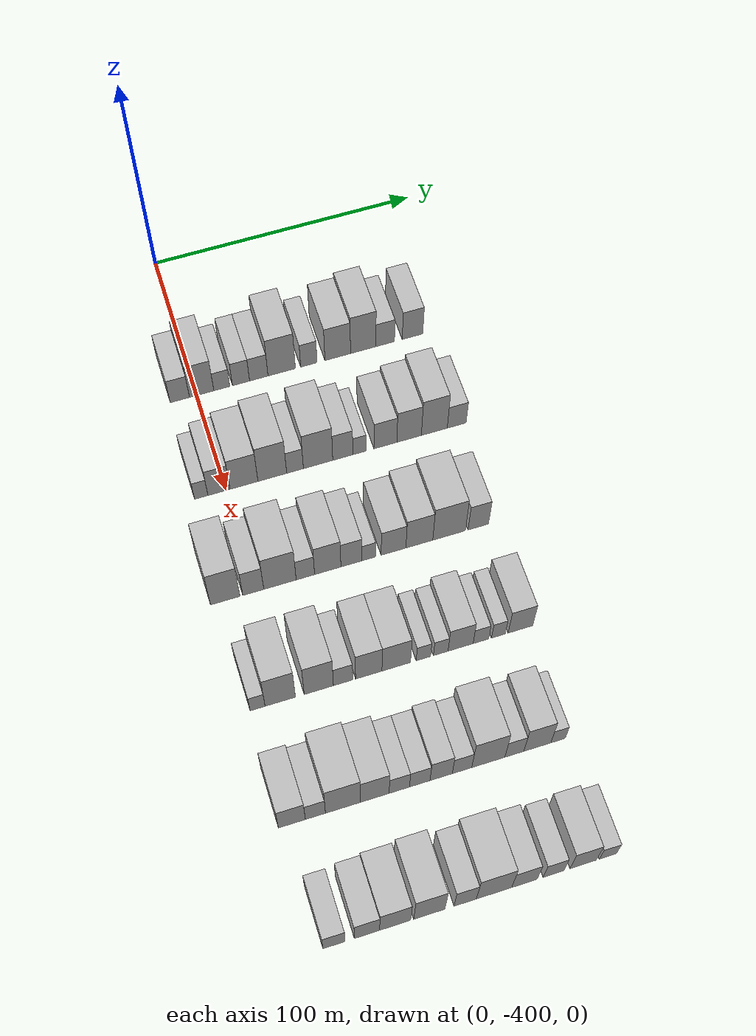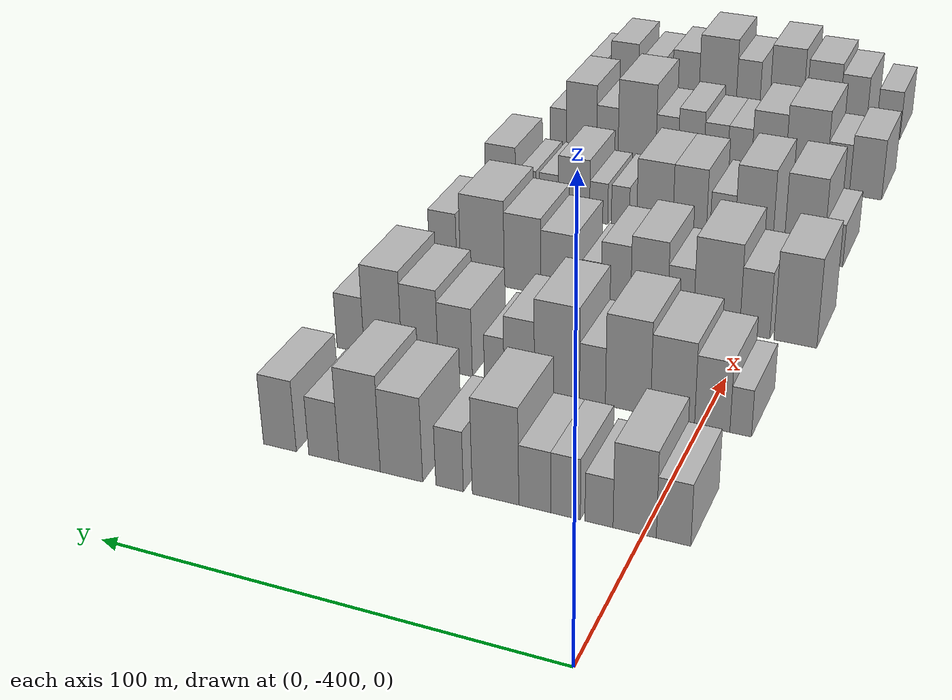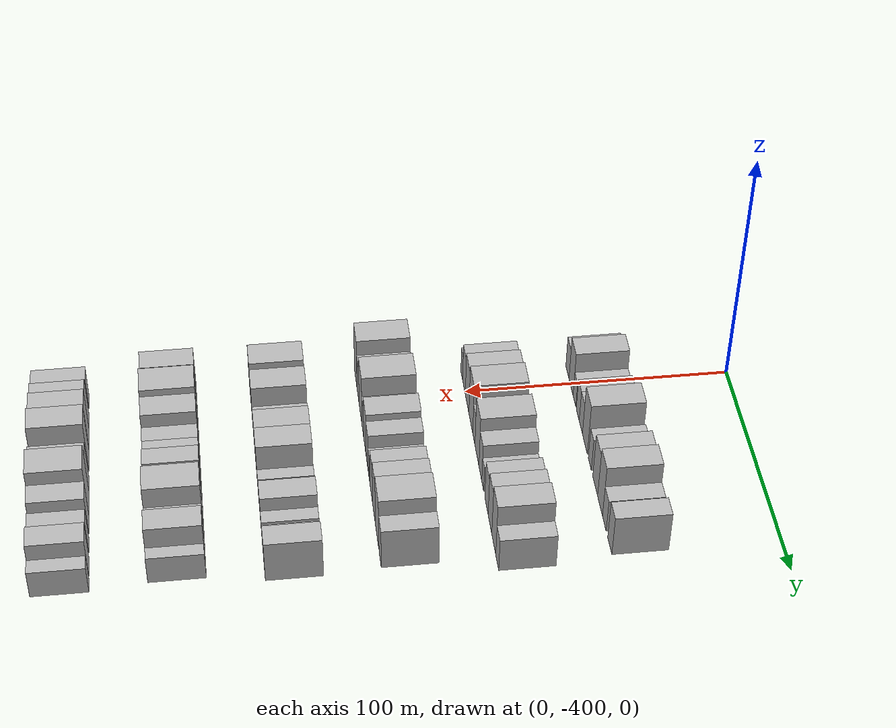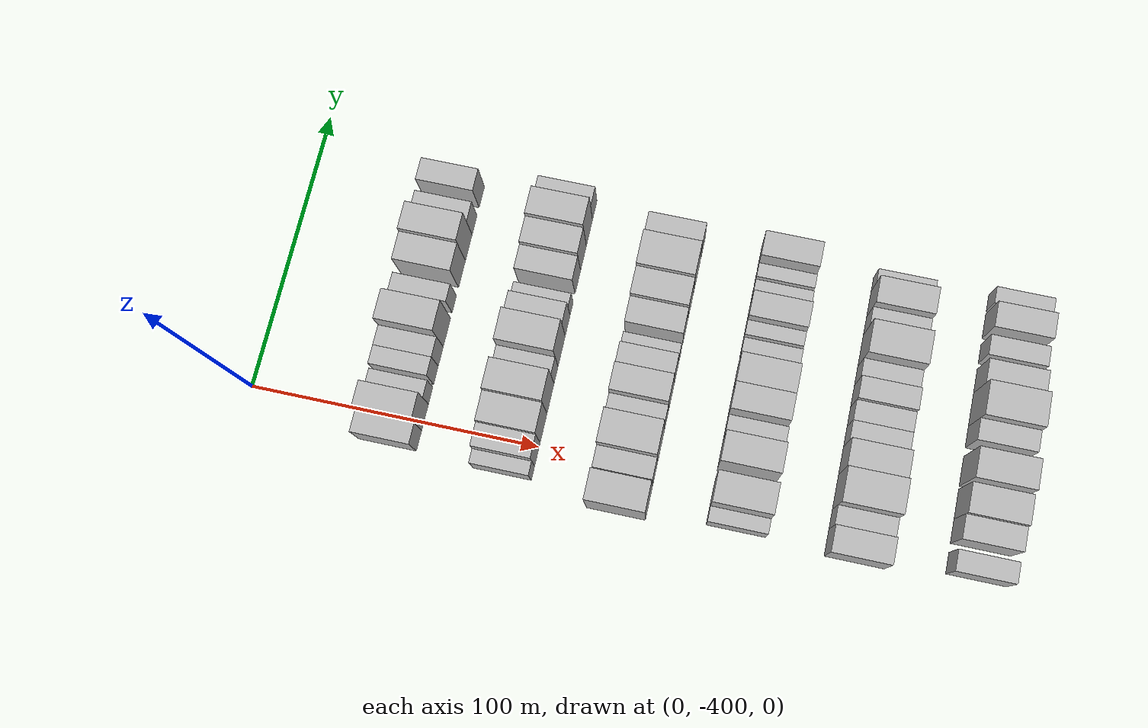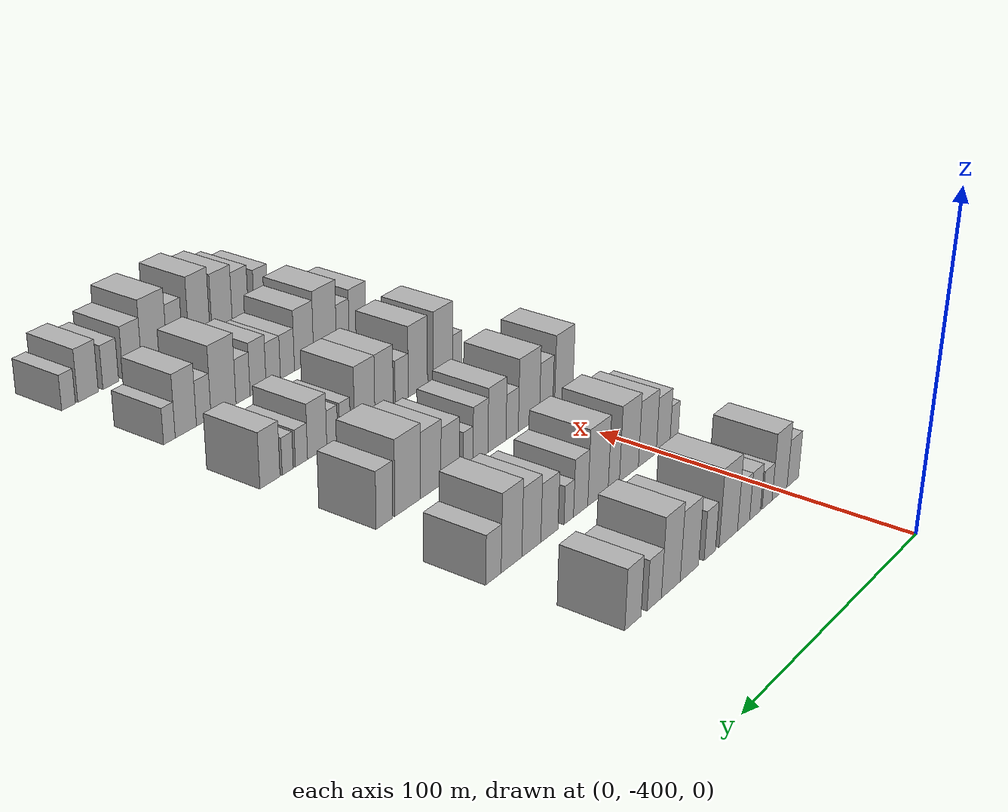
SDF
<sdf version="1.6">
 <world name="default">
  <model name="building_22">
   <static>1</static>
   <pose>50.0000 -406.2614 0 0.000000 0.000000 0.000000</pose>
   <link name="link">
    <pose>0 0 7.50 0 0 0</pose>
    <collision name="collision"><geometry><box><size>20.0000 7.1791 15.0000</size></box></geometry></collision>
    <visual name="visual">
     <cast_shadows>0</cast_shadows>
     <geometry><box><size>20.0000 7.1791 15.0000</size></box></geometry>
     <material>
      <script>
       <uri>model://HANNAS_wall/materials/scripts</uri>
       <uri>model://HANNAS_wall/materials/textures</uri>
       <name>vrc/HANNAS_wall</name>
      </script>
     </material>
    </visual>
   </link>
  </model>
  <model name="building_23">
   <static>1</static>
   <pose>50.0000 -398.1142 0 0.000000 0.000000 0.000000</pose>
   <link name="link">
    <pose>0 0 10.50 0 0 0</pose>
    <collision name="collision"><geometry><box><size>20.0000 9.1151 21.0000</size></box></geometry></collision>
    <visual name="visual">
     <cast_shadows>0</cast_shadows>
     <geometry><box><size>20.0000 9.1151 21.0000</size></box></geometry>
     <material>
      <script>
       <uri>model://HANNAS_wall/materials/scripts</uri>
       <uri>model://HANNAS_wall/materials/textures</uri>
       <name>vrc/HANNAS_wall</name>
      </script>
     </material>
    </visual>
   </link>
  </model>
  <model name="building_24">
   <static>1</static>
   <pose>50.0000 -390.5618 0 0.000000 0.000000 0.000000</pose>
   <link name="link">
    <pose>0 0 6.00 0 0 0</pose>
    <collision name="collision"><geometry><box><size>20.0000 5.9898 12.0000</size></box></geometry></collision>
    <visual name="visual">
     <cast_shadows>0</cast_shadows>
     <geometry><box><size>20.0000 5.9898 12.0000</size></box></geometry>
     <material>
      <script>
       <uri>model://HANNAS_wall/materials/scripts</uri>
       <uri>model://HANNAS_wall/materials/textures</uri>
       <name>vrc/HANNAS_wall</name>
      </script>
     </material>
    </visual>
   </link>
  </model>
  <model name="building_25">
   <static>1</static>
   <pose>50.0000 -383.3535 0 0.000000 0.000000 0.000000</pose>
   <link name="link">
    <pose>0 0 7.50 0 0 0</pose>
    <collision name="collision"><geometry><box><size>20.0000 6.4269 15.0000</size></box></geometry></collision>
    <visual name="visual">
     <cast_shadows>0</cast_shadows>
     <geometry><box><size>20.0000 6.4269 15.0000</size></box></geometry>
     <material>
      <script>
       <uri>model://HANNAS_wall/materials/scripts</uri>
       <uri>model://HANNAS_wall/materials/textures</uri>
       <name>vrc/HANNAS_wall</name>
      </script>
     </material>
    </visual>
   </link>
  </model>
  <model name="building_26">
   <static>1</static>
   <pose>50.0000 -376.6653 0 0.000000 0.000000 0.000000</pose>
   <link name="link">
    <pose>0 0 7.50 0 0 0</pose>
    <collision name="collision"><geometry><box><size>20.0000 6.9495 15.0000</size></box></geometry></collision>
    <visual name="visual">
     <cast_shadows>0</cast_shadows>
     <geometry><box><size>20.0000 6.9495 15.0000</size></box></geometry>
     <material>
      <script>
       <uri>model://HANNAS_wall/materials/scripts</uri>
       <uri>model://HANNAS_wall/materials/textures</uri>
       <name>vrc/HANNAS_wall</name>
      </script>
     </material>
    </visual>
   </link>
  </model>
  <model name="building_27">
   <static>1</static>
   <pose>50.0000 -368.0077 0 0.000000 0.000000 0.000000</pose>
   <link name="link">
    <pose>0 0 12.00 0 0 0</pose>
    <collision name="collision"><geometry><box><size>20.0000 10.3655 24.0000</size></box></geometry></collision>
    <visual name="visual">
     <cast_shadows>0</cast_shadows>
     <geometry><box><size>20.0000 10.3655 24.0000</size></box></geometry>
     <material>
      <script>
       <uri>model://HANNAS_wall/materials/scripts</uri>
       <uri>model://HANNAS_wall/materials/textures</uri>
       <name>vrc/HANNAS_wall</name>
      </script>
     </material>
    </visual>
   </link>
  </model>
  <model name="building_28">
   <static>1</static>
   <pose>50.0000 -357.7031 0 0.000000 0.000000 0.000000</pose>
   <link name="link">
    <pose>0 0 7.50 0 0 0</pose>
    <collision name="collision"><geometry><box><size>20.0000 6.2438 15.0000</size></box></geometry></collision>
    <visual name="visual">
     <cast_shadows>0</cast_shadows>
     <geometry><box><size>20.0000 6.2438 15.0000</size></box></geometry>
     <material>
      <script>
       <uri>model://HANNAS_wall/materials/scripts</uri>
       <uri>model://HANNAS_wall/materials/textures</uri>
       <name>vrc/HANNAS_wall</name>
      </script>
     </material>
    </visual>
   </link>
  </model>
  <model name="building_29">
   <static>1</static>
   <pose>50.0000 -346.6803 0 0.000000 0.000000 0.000000</pose>
   <link name="link">
    <pose>0 0 10.50 0 0 0</pose>
    <collision name="collision"><geometry><box><size>20.0000 9.8017 21.0000</size></box></geometry></collision>
    <visual name="visual">
     <cast_shadows>0</cast_shadows>
     <geometry><box><size>20.0000 9.8017 21.0000</size></box></geometry>
     <material>
      <script>
       <uri>model://HANNAS_wall/materials/scripts</uri>
       <uri>model://HANNAS_wall/materials/textures</uri>
       <name>vrc/HANNAS_wall</name>
      </script>
     </material>
    </visual>
   </link>
  </model>
  <model name="building_30">
   <static>1</static>
   <pose>50.0000 -336.9209 0 0.000000 0.000000 0.000000</pose>
   <link name="link">
    <pose>0 0 12.00 0 0 0</pose>
    <collision name="collision"><geometry><box><size>20.0000 9.7171 24.0000</size></box></geometry></collision>
    <visual name="visual">
     <cast_shadows>0</cast_shadows>
     <geometry><box><size>20.0000 9.7171 24.0000</size></box></geometry>
     <material>
      <script>
       <uri>model://HANNAS_wall/materials/scripts</uri>
       <uri>model://HANNAS_wall/materials/textures</uri>
       <name>vrc/HANNAS_wall</name>
      </script>
     </material>
    </visual>
   </link>
  </model>
  <model name="building_31">
   <static>1</static>
   <pose>50.0000 -328.4651 0 0.000000 0.000000 0.000000</pose>
   <link name="link">
    <pose>0 0 7.50 0 0 0</pose>
    <collision name="collision"><geometry><box><size>20.0000 7.1943 15.0000</size></box></geometry></collision>
    <visual name="visual">
     <cast_shadows>0</cast_shadows>
     <geometry><box><size>20.0000 7.1943 15.0000</size></box></geometry>
     <material>
      <script>
       <uri>model://HANNAS_wall/materials/scripts</uri>
       <uri>model://HANNAS_wall/materials/textures</uri>
       <name>vrc/HANNAS_wall</name>
      </script>
     </material>
    </visual>
   </link>
  </model>
  <model name="building_32">
   <static>1</static>
   <pose>50.0000 -317.8894 0 0.000000 0.000000 0.000000</pose>
   <link name="link">
    <pose>0 0 9.00 0 0 0</pose>
    <collision name="collision"><geometry><box><size>20.0000 7.9571 18.0000</size></box></geometry></collision>
    <visual name="visual">
     <cast_shadows>0</cast_shadows>
     <geometry><box><size>20.0000 7.9571 18.0000</size></box></geometry>
     <material>
      <script>
       <uri>model://HANNAS_wall/materials/scripts</uri>
       <uri>model://HANNAS_wall/materials/textures</uri>
       <name>vrc/HANNAS_wall</name>
      </script>
     </material>
    </visual>
   </link>
  </model>
  <model name="building_154">
   <static>1</static>
   <pose>90.0000 -408.9682 0 0.000000 0.000000 0.000000</pose>
   <link name="link">
    <pose>0 0 6.00 0 0 0</pose>
    <collision name="collision"><geometry><box><size>20.0000 4.8539 12.0000</size></box></geometry></collision>
    <visual name="visual">
     <cast_shadows>0</cast_shadows>
     <geometry><box><size>20.0000 4.8539 12.0000</size></box></geometry>
     <material>
      <script>
       <uri>model://HANNAS_wall/materials/scripts</uri>
       <uri>model://HANNAS_wall/materials/textures</uri>
       <name>vrc/HANNAS_wall</name>
      </script>
     </material>
    </visual>
   </link>
  </model>
  <model name="building_155">
   <static>1</static>
   <pose>90.0000 -402.5379 0 0.000000 0.000000 0.000000</pose>
   <link name="link">
    <pose>0 0 9.00 0 0 0</pose>
    <collision name="collision"><geometry><box><size>20.0000 8.0066 18.0000</size></box></geometry></collision>
    <visual name="visual">
     <cast_shadows>0</cast_shadows>
     <geometry><box><size>20.0000 8.0066 18.0000</size></box></geometry>
     <material>
      <script>
       <uri>model://HANNAS_wall/materials/scripts</uri>
       <uri>model://HANNAS_wall/materials/textures</uri>
       <name>vrc/HANNAS_wall</name>
      </script>
     </material>
    </visual>
   </link>
  </model>
  <model name="building_156">
   <static>1</static>
   <pose>90.0000 -393.4453 0 0.000000 0.000000 0.000000</pose>
   <link name="link">
    <pose>0 0 10.50 0 0 0</pose>
    <collision name="collision"><geometry><box><size>20.0000 10.1785 21.0000</size></box></geometry></collision>
    <visual name="visual">
     <cast_shadows>0</cast_shadows>
     <geometry><box><size>20.0000 10.1785 21.0000</size></box></geometry>
     <material>
      <script>
       <uri>model://HANNAS_wall/materials/scripts</uri>
       <uri>model://HANNAS_wall/materials/textures</uri>
       <name>vrc/HANNAS_wall</name>
      </script>
     </material>
    </visual>
   </link>
  </model>
  <model name="building_157">
   <static>1</static>
   <pose>90.0000 -383.0921 0 0.000000 0.000000 0.000000</pose>
   <link name="link">
    <pose>0 0 12.00 0 0 0</pose>
    <collision name="collision"><geometry><box><size>20.0000 10.5280 24.0000</size></box></geometry></collision>
    <visual name="visual">
     <cast_shadows>0</cast_shadows>
     <geometry><box><size>20.0000 10.5280 24.0000</size></box></geometry>
     <material>
      <script>
       <uri>model://HANNAS_wall/materials/scripts</uri>
       <uri>model://HANNAS_wall/materials/textures</uri>
       <name>vrc/HANNAS_wall</name>
      </script>
     </material>
    </visual>
   </link>
  </model>
  <model name="building_158">
   <static>1</static>
   <pose>90.0000 -374.7559 0 0.000000 0.000000 0.000000</pose>
   <link name="link">
    <pose>0 0 7.50 0 0 0</pose>
    <collision name="collision"><geometry><box><size>20.0000 6.1444 15.0000</size></box></geometry></collision>
    <visual name="visual">
     <cast_shadows>0</cast_shadows>
     <geometry><box><size>20.0000 6.1444 15.0000</size></box></geometry>
     <material>
      <script>
       <uri>model://HANNAS_wall/materials/scripts</uri>
       <uri>model://HANNAS_wall/materials/textures</uri>
       <name>vrc/HANNAS_wall</name>
      </script>
     </material>
    </visual>
   </link>
  </model>
  <model name="building_159">
   <static>1</static>
   <pose>90.0000 -366.2645 0 0.000000 0.000000 0.000000</pose>
   <link name="link">
    <pose>0 0 12.00 0 0 0</pose>
    <collision name="collision"><geometry><box><size>20.0000 10.8383 24.0000</size></box></geometry></collision>
    <visual name="visual">
     <cast_shadows>0</cast_shadows>
     <geometry><box><size>20.0000 10.8383 24.0000</size></box></geometry>
     <material>
      <script>
       <uri>model://HANNAS_wall/materials/scripts</uri>
       <uri>model://HANNAS_wall/materials/textures</uri>
       <name>vrc/HANNAS_wall</name>
      </script>
     </material>
    </visual>
   </link>
  </model>
  <model name="building_160">
   <static>1</static>
   <pose>90.0000 -357.1321 0 0.000000 0.000000 0.000000</pose>
   <link name="link">
    <pose>0 0 9.00 0 0 0</pose>
    <collision name="collision"><geometry><box><size>20.0000 7.4265 18.0000</size></box></geometry></collision>
    <visual name="visual">
     <cast_shadows>0</cast_shadows>
     <geometry><box><size>20.0000 7.4265 18.0000</size></box></geometry>
     <material>
      <script>
       <uri>model://HANNAS_wall/materials/scripts</uri>
       <uri>model://HANNAS_wall/materials/textures</uri>
       <name>vrc/HANNAS_wall</name>
      </script>
     </material>
    </visual>
   </link>
  </model>
  <model name="building_161">
   <static>1</static>
   <pose>90.0000 -350.9924 0 0.000000 0.000000 0.000000</pose>
   <link name="link">
    <pose>0 0 6.00 0 0 0</pose>
    <collision name="collision"><geometry><box><size>20.0000 4.8529 12.0000</size></box></geometry></collision>
    <visual name="visual">
     <cast_shadows>0</cast_shadows>
     <geometry><box><size>20.0000 4.8529 12.0000</size></box></geometry>
     <material>
      <script>
       <uri>model://HANNAS_wall/materials/scripts</uri>
       <uri>model://HANNAS_wall/materials/textures</uri>
       <name>vrc/HANNAS_wall</name>
      </script>
     </material>
    </visual>
   </link>
  </model>
  <model name="building_162">
   <static>1</static>
   <pose>90.0000 -341.2931 0 0.000000 0.000000 0.000000</pose>
   <link name="link">
    <pose>0 0 9.00 0 0 0</pose>
    <collision name="collision"><geometry><box><size>20.0000 8.5458 18.0000</size></box></geometry></collision>
    <visual name="visual">
     <cast_shadows>0</cast_shadows>
     <geometry><box><size>20.0000 8.5458 18.0000</size></box></geometry>
     <material>
      <script>
       <uri>model://HANNAS_wall/materials/scripts</uri>
       <uri>model://HANNAS_wall/materials/textures</uri>
       <name>vrc/HANNAS_wall</name>
      </script>
     </material>
    </visual>
   </link>
  </model>
  <model name="building_163">
   <static>1</static>
   <pose>90.0000 -332.4166 0 0.000000 0.000000 0.000000</pose>
   <link name="link">
    <pose>0 0 10.50 0 0 0</pose>
    <collision name="collision"><geometry><box><size>20.0000 9.2072 21.0000</size></box></geometry></collision>
    <visual name="visual">
     <cast_shadows>0</cast_shadows>
     <geometry><box><size>20.0000 9.2072 21.0000</size></box></geometry>
     <material>
      <script>
       <uri>model://HANNAS_wall/materials/scripts</uri>
       <uri>model://HANNAS_wall/materials/textures</uri>
       <name>vrc/HANNAS_wall</name>
      </script>
     </material>
    </visual>
   </link>
  </model>
  <model name="building_164">
   <static>1</static>
   <pose>90.0000 -322.9264 0 0.000000 0.000000 0.000000</pose>
   <link name="link">
    <pose>0 0 12.00 0 0 0</pose>
    <collision name="collision"><geometry><box><size>20.0000 9.7731 24.0000</size></box></geometry></collision>
    <visual name="visual">
     <cast_shadows>0</cast_shadows>
     <geometry><box><size>20.0000 9.7731 24.0000</size></box></geometry>
     <material>
      <script>
       <uri>model://HANNAS_wall/materials/scripts</uri>
       <uri>model://HANNAS_wall/materials/textures</uri>
       <name>vrc/HANNAS_wall</name>
      </script>
     </material>
    </visual>
   </link>
  </model>
  <model name="building_165">
   <static>1</static>
   <pose>90.0000 -314.4726 0 0.000000 0.000000 0.000000</pose>
   <link name="link">
    <pose>0 0 7.50 0 0 0</pose>
    <collision name="collision"><geometry><box><size>20.0000 7.1345 15.0000</size></box></geometry></collision>
    <visual name="visual">
     <cast_shadows>0</cast_shadows>
     <geometry><box><size>20.0000 7.1345 15.0000</size></box></geometry>
     <material>
      <script>
       <uri>model://HANNAS_wall/materials/scripts</uri>
       <uri>model://HANNAS_wall/materials/textures</uri>
       <name>vrc/HANNAS_wall</name>
      </script>
     </material>
    </visual>
   </link>
  </model>
  <model name="building_292">
   <static>1</static>
   <pose>130.0000 -411.2373 0 0.000000 0.000000 0.000000</pose>
   <link name="link">
    <pose>0 0 12.00 0 0 0</pose>
    <collision name="collision"><geometry><box><size>20.0000 10.3719 24.0000</size></box></geometry></collision>
    <visual name="visual">
     <cast_shadows>0</cast_shadows>
     <geometry><box><size>20.0000 10.3719 24.0000</size></box></geometry>
     <material>
      <script>
       <uri>model://HANNAS_wall/materials/scripts</uri>
       <uri>model://HANNAS_wall/materials/textures</uri>
       <name>vrc/HANNAS_wall</name>
      </script>
     </material>
    </visual>
   </link>
  </model>
  <model name="building_293">
   <static>1</static>
   <pose>130.0000 -401.3521 0 0.000000 0.000000 0.000000</pose>
   <link name="link">
    <pose>0 0 9.00 0 0 0</pose>
    <collision name="collision"><geometry><box><size>20.0000 7.3985 18.0000</size></box></geometry></collision>
    <visual name="visual">
     <cast_shadows>0</cast_shadows>
     <geometry><box><size>20.0000 7.3985 18.0000</size></box></geometry>
     <material>
      <script>
       <uri>model://HANNAS_wall/materials/scripts</uri>
       <uri>model://HANNAS_wall/materials/textures</uri>
       <name>vrc/HANNAS_wall</name>
      </script>
     </material>
    </visual>
   </link>
  </model>
  <model name="building_294">
   <static>1</static>
   <pose>130.0000 -391.9059 0 0.000000 0.000000 0.000000</pose>
   <link name="link">
    <pose>0 0 12.00 0 0 0</pose>
    <collision name="collision"><geometry><box><size>20.0000 11.4940 24.0000</size></box></geometry></collision>
    <visual name="visual">
     <cast_shadows>0</cast_shadows>
     <geometry><box><size>20.0000 11.4940 24.0000</size></box></geometry>
     <material>
      <script>
       <uri>model://HANNAS_wall/materials/scripts</uri>
       <uri>model://HANNAS_wall/materials/textures</uri>
       <name>vrc/HANNAS_wall</name>
      </script>
     </material>
    </visual>
   </link>
  </model>
  <model name="building_295">
   <static>1</static>
   <pose>130.0000 -382.8802 0 0.000000 0.000000 0.000000</pose>
   <link name="link">
    <pose>0 0 7.50 0 0 0</pose>
    <collision name="collision"><geometry><box><size>20.0000 6.5574 15.0000</size></box></geometry></collision>
    <visual name="visual">
     <cast_shadows>0</cast_shadows>
     <geometry><box><size>20.0000 6.5574 15.0000</size></box></geometry>
     <material>
      <script>
       <uri>model://HANNAS_wall/materials/scripts</uri>
       <uri>model://HANNAS_wall/materials/textures</uri>
       <name>vrc/HANNAS_wall</name>
      </script>
     </material>
    </visual>
   </link>
  </model>
  <model name="building_296">
   <static>1</static>
   <pose>130.0000 -374.8951 0 0.000000 0.000000 0.000000</pose>
   <link name="link">
    <pose>0 0 10.50 0 0 0</pose>
    <collision name="collision"><geometry><box><size>20.0000 9.4127 21.0000</size></box></geometry></collision>
    <visual name="visual">
     <cast_shadows>0</cast_shadows>
     <geometry><box><size>20.0000 9.4127 21.0000</size></box></geometry>
     <material>
      <script>
       <uri>model://HANNAS_wall/materials/scripts</uri>
       <uri>model://HANNAS_wall/materials/textures</uri>
       <name>vrc/HANNAS_wall</name>
      </script>
     </material>
    </visual>
   </link>
  </model>
  <model name="building_297">
   <static>1</static>
   <pose>130.0000 -366.3924 0 0.000000 0.000000 0.000000</pose>
   <link name="link">
    <pose>0 0 9.00 0 0 0</pose>
    <collision name="collision"><geometry><box><size>20.0000 7.5927 18.0000</size></box></geometry></collision>
    <visual name="visual">
     <cast_shadows>0</cast_shadows>
     <geometry><box><size>20.0000 7.5927 18.0000</size></box></geometry>
     <material>
      <script>
       <uri>model://HANNAS_wall/materials/scripts</uri>
       <uri>model://HANNAS_wall/materials/textures</uri>
       <name>vrc/HANNAS_wall</name>
      </script>
     </material>
    </visual>
   </link>
  </model>
  <model name="building_298">
   <static>1</static>
   <pose>130.0000 -360.1736 0 0.000000 0.000000 0.000000</pose>
   <link name="link">
    <pose>0 0 6.00 0 0 0</pose>
    <collision name="collision"><geometry><box><size>20.0000 4.8449 12.0000</size></box></geometry></collision>
    <visual name="visual">
     <cast_shadows>0</cast_shadows>
     <geometry><box><size>20.0000 4.8449 12.0000</size></box></geometry>
     <material>
      <script>
       <uri>model://HANNAS_wall/materials/scripts</uri>
       <uri>model://HANNAS_wall/materials/textures</uri>
       <name>vrc/HANNAS_wall</name>
      </script>
     </material>
    </visual>
   </link>
  </model>
  <model name="building_299">
   <static>1</static>
   <pose>130.0000 -351.2600 0 0.000000 0.000000 0.000000</pose>
   <link name="link">
    <pose>0 0 9.00 0 0 0</pose>
    <collision name="collision"><geometry><box><size>20.0000 8.9824 18.0000</size></box></geometry></collision>
    <visual name="visual">
     <cast_shadows>0</cast_shadows>
     <geometry><box><size>20.0000 8.9824 18.0000</size></box></geometry>
     <material>
      <script>
       <uri>model://HANNAS_wall/materials/scripts</uri>
       <uri>model://HANNAS_wall/materials/textures</uri>
       <name>vrc/HANNAS_wall</name>
      </script>
     </material>
    </visual>
   </link>
  </model>
  <model name="building_300">
   <static>1</static>
   <pose>130.0000 -341.8849 0 0.000000 0.000000 0.000000</pose>
   <link name="link">
    <pose>0 0 10.50 0 0 0</pose>
    <collision name="collision"><geometry><box><size>20.0000 9.7678 21.0000</size></box></geometry></collision>
    <visual name="visual">
     <cast_shadows>0</cast_shadows>
     <geometry><box><size>20.0000 9.7678 21.0000</size></box></geometry>
     <material>
      <script>
       <uri>model://HANNAS_wall/materials/scripts</uri>
       <uri>model://HANNAS_wall/materials/textures</uri>
       <name>vrc/HANNAS_wall</name>
      </script>
     </material>
    </visual>
   </link>
  </model>
  <model name="building_301">
   <static>1</static>
   <pose>130.0000 -331.0470 0 0.000000 0.000000 0.000000</pose>
   <link name="link">
    <pose>0 0 12.00 0 0 0</pose>
    <collision name="collision"><geometry><box><size>20.0000 11.9081 24.0000</size></box></geometry></collision>
    <visual name="visual">
     <cast_shadows>0</cast_shadows>
     <geometry><box><size>20.0000 11.9081 24.0000</size></box></geometry>
     <material>
      <script>
       <uri>model://HANNAS_wall/materials/scripts</uri>
       <uri>model://HANNAS_wall/materials/textures</uri>
       <name>vrc/HANNAS_wall</name>
      </script>
     </material>
    </visual>
   </link>
  </model>
  <model name="building_302">
   <static>1</static>
   <pose>130.0000 -320.3497 0 0.000000 0.000000 0.000000</pose>
   <link name="link">
    <pose>0 0 9.00 0 0 0</pose>
    <collision name="collision"><geometry><box><size>20.0000 7.4864 18.0000</size></box></geometry></collision>
    <visual name="visual">
     <cast_shadows>0</cast_shadows>
     <geometry><box><size>20.0000 7.4864 18.0000</size></box></geometry>
     <material>
      <script>
       <uri>model://HANNAS_wall/materials/scripts</uri>
       <uri>model://HANNAS_wall/materials/textures</uri>
       <name>vrc/HANNAS_wall</name>
      </script>
     </material>
    </visual>
   </link>
  </model>
  <model name="building_428">
   <static>1</static>
   <pose>170.0000 -411.1898 0 0.000000 0.000000 0.000000</pose>
   <link name="link">
    <pose>0 0 6.00 0 0 0</pose>
    <collision name="collision"><geometry><box><size>20.0000 5.1107 12.0000</size></box></geometry></collision>
    <visual name="visual">
     <cast_shadows>0</cast_shadows>
     <geometry><box><size>20.0000 5.1107 12.0000</size></box></geometry>
     <material>
      <script>
       <uri>model://HANNAS_wall/materials/scripts</uri>
       <uri>model://HANNAS_wall/materials/textures</uri>
       <name>vrc/HANNAS_wall</name>
      </script>
     </material>
    </visual>
   </link>
  </model>
  <model name="building_429">
   <static>1</static>
   <pose>170.0000 -403.4341 0 0.000000 0.000000 0.000000</pose>
   <link name="link">
    <pose>0 0 12.00 0 0 0</pose>
    <collision name="collision"><geometry><box><size>20.0000 10.4008 24.0000</size></box></geometry></collision>
    <visual name="visual">
     <cast_shadows>0</cast_shadows>
     <geometry><box><size>20.0000 10.4008 24.0000</size></box></geometry>
     <material>
      <script>
       <uri>model://HANNAS_wall/materials/scripts</uri>
       <uri>model://HANNAS_wall/materials/textures</uri>
       <name>vrc/HANNAS_wall</name>
      </script>
     </material>
    </visual>
   </link>
  </model>
  <model name="building_430">
   <static>1</static>
   <pose>170.0000 -390.1929 0 0.000000 0.000000 0.000000</pose>
   <link name="link">
    <pose>0 0 12.00 0 0 0</pose>
    <collision name="collision"><geometry><box><size>20.0000 10.0816 24.0000</size></box></geometry></collision>
    <visual name="visual">
     <cast_shadows>0</cast_shadows>
     <geometry><box><size>20.0000 10.0816 24.0000</size></box></geometry>
     <material>
      <script>
       <uri>model://HANNAS_wall/materials/scripts</uri>
       <uri>model://HANNAS_wall/materials/textures</uri>
       <name>vrc/HANNAS_wall</name>
      </script>
     </material>
    </visual>
   </link>
  </model>
  <model name="building_431">
   <static>1</static>
   <pose>170.0000 -381.8179 0 0.000000 0.000000 0.000000</pose>
   <link name="link">
    <pose>0 0 7.50 0 0 0</pose>
    <collision name="collision"><geometry><box><size>20.0000 6.6685 15.0000</size></box></geometry></collision>
    <visual name="visual">
     <cast_shadows>0</cast_shadows>
     <geometry><box><size>20.0000 6.6685 15.0000</size></box></geometry>
     <material>
      <script>
       <uri>model://HANNAS_wall/materials/scripts</uri>
       <uri>model://HANNAS_wall/materials/textures</uri>
       <name>vrc/HANNAS_wall</name>
      </script>
     </material>
    </visual>
   </link>
  </model>
  <model name="building_432">
   <static>1</static>
   <pose>170.0000 -372.8968 0 0.000000 0.000000 0.000000</pose>
   <link name="link">
    <pose>0 0 10.50 0 0 0</pose>
    <collision name="collision"><geometry><box><size>20.0000 9.1738 21.0000</size></box></geometry></collision>
    <visual name="visual">
     <cast_shadows>0</cast_shadows>
     <geometry><box><size>20.0000 9.1738 21.0000</size></box></geometry>
     <material>
      <script>
       <uri>model://HANNAS_wall/materials/scripts</uri>
       <uri>model://HANNAS_wall/materials/textures</uri>
       <name>vrc/HANNAS_wall</name>
      </script>
     </material>
    </visual>
   </link>
  </model>
  <model name="building_433">
   <static>1</static>
   <pose>170.0000 -363.3189 0 0.000000 0.000000 0.000000</pose>
   <link name="link">
    <pose>0 0 10.50 0 0 0</pose>
    <collision name="collision"><geometry><box><size>20.0000 9.9821 21.0000</size></box></geometry></collision>
    <visual name="visual">
     <cast_shadows>0</cast_shadows>
     <geometry><box><size>20.0000 9.9821 21.0000</size></box></geometry>
     <material>
      <script>
       <uri>model://HANNAS_wall/materials/scripts</uri>
       <uri>model://HANNAS_wall/materials/textures</uri>
       <name>vrc/HANNAS_wall</name>
      </script>
     </material>
    </visual>
   </link>
  </model>
  <model name="building_434">
   <static>1</static>
   <pose>170.0000 -353.8003 0 0.000000 0.000000 0.000000</pose>
   <link name="link">
    <pose>0 0 6.00 0 0 0</pose>
    <collision name="collision"><geometry><box><size>20.0000 5.0551 12.0000</size></box></geometry></collision>
    <visual name="visual">
     <cast_shadows>0</cast_shadows>
     <geometry><box><size>20.0000 5.0551 12.0000</size></box></geometry>
     <material>
      <script>
       <uri>model://HANNAS_wall/materials/scripts</uri>
       <uri>model://HANNAS_wall/materials/textures</uri>
       <name>vrc/HANNAS_wall</name>
      </script>
     </material>
    </visual>
   </link>
  </model>
  <model name="building_435">
   <static>1</static>
   <pose>170.0000 -347.7024 0 0.000000 0.000000 0.000000</pose>
   <link name="link">
    <pose>0 0 6.00 0 0 0</pose>
    <collision name="collision"><geometry><box><size>20.0000 5.1406 12.0000</size></box></geometry></collision>
    <visual name="visual">
     <cast_shadows>0</cast_shadows>
     <geometry><box><size>20.0000 5.1406 12.0000</size></box></geometry>
     <material>
      <script>
       <uri>model://HANNAS_wall/materials/scripts</uri>
       <uri>model://HANNAS_wall/materials/textures</uri>
       <name>vrc/HANNAS_wall</name>
      </script>
     </material>
    </visual>
   </link>
  </model>
  <model name="building_436">
   <static>1</static>
   <pose>170.0000 -340.6919 0 0.000000 0.000000 0.000000</pose>
   <link name="link">
    <pose>0 0 9.00 0 0 0</pose>
    <collision name="collision"><geometry><box><size>20.0000 8.8805 18.0000</size></box></geometry></collision>
    <visual name="visual">
     <cast_shadows>0</cast_shadows>
     <geometry><box><size>20.0000 8.8805 18.0000</size></box></geometry>
     <material>
      <script>
       <uri>model://HANNAS_wall/materials/scripts</uri>
       <uri>model://HANNAS_wall/materials/textures</uri>
       <name>vrc/HANNAS_wall</name>
      </script>
     </material>
    </visual>
   </link>
  </model>
  <model name="building_437">
   <static>1</static>
   <pose>170.0000 -333.4954 0 0.000000 0.000000 0.000000</pose>
   <link name="link">
    <pose>0 0 6.00 0 0 0</pose>
    <collision name="collision"><geometry><box><size>20.0000 5.5124 12.0000</size></box></geometry></collision>
    <visual name="visual">
     <cast_shadows>0</cast_shadows>
     <geometry><box><size>20.0000 5.5124 12.0000</size></box></geometry>
     <material>
      <script>
       <uri>model://HANNAS_wall/materials/scripts</uri>
       <uri>model://HANNAS_wall/materials/textures</uri>
       <name>vrc/HANNAS_wall</name>
      </script>
     </material>
    </visual>
   </link>
  </model>
  <model name="building_438">
   <static>1</static>
   <pose>170.0000 -327.2798 0 0.000000 0.000000 0.000000</pose>
   <link name="link">
    <pose>0 0 6.00 0 0 0</pose>
    <collision name="collision"><geometry><box><size>20.0000 4.9187 12.0000</size></box></geometry></collision>
    <visual name="visual">
     <cast_shadows>0</cast_shadows>
     <geometry><box><size>20.0000 4.9187 12.0000</size></box></geometry>
     <material>
      <script>
       <uri>model://HANNAS_wall/materials/scripts</uri>
       <uri>model://HANNAS_wall/materials/textures</uri>
       <name>vrc/HANNAS_wall</name>
      </script>
     </material>
    </visual>
   </link>
  </model>
  <model name="building_439">
   <static>1</static>
   <pose>170.0000 -319.4191 0 0.000000 0.000000 0.000000</pose>
   <link name="link">
    <pose>0 0 9.00 0 0 0</pose>
    <collision name="collision"><geometry><box><size>20.0000 8.8028 18.0000</size></box></geometry></collision>
    <visual name="visual">
     <cast_shadows>0</cast_shadows>
     <geometry><box><size>20.0000 8.8028 18.0000</size></box></geometry>
     <material>
      <script>
       <uri>model://HANNAS_wall/materials/scripts</uri>
       <uri>model://HANNAS_wall/materials/textures</uri>
       <name>vrc/HANNAS_wall</name>
      </script>
     </material>
    </visual>
   </link>
  </model>
  <model name="building_564">
   <static>1</static>
   <pose>210.0000 -411.2218 0 0.000000 0.000000 0.000000</pose>
   <link name="link">
    <pose>0 0 9.00 0 0 0</pose>
    <collision name="collision"><geometry><box><size>20.0000 8.9512 18.0000</size></box></geometry></collision>
    <visual name="visual">
     <cast_shadows>0</cast_shadows>
     <geometry><box><size>20.0000 8.9512 18.0000</size></box></geometry>
     <material>
      <script>
       <uri>model://HANNAS_wall/materials/scripts</uri>
       <uri>model://HANNAS_wall/materials/textures</uri>
       <name>vrc/HANNAS_wall</name>
      </script>
     </material>
    </visual>
   </link>
  </model>
  <model name="building_565">
   <static>1</static>
   <pose>210.0000 -403.4185 0 0.000000 0.000000 0.000000</pose>
   <link name="link">
    <pose>0 0 7.50 0 0 0</pose>
    <collision name="collision"><geometry><box><size>20.0000 6.6554 15.0000</size></box></geometry></collision>
    <visual name="visual">
     <cast_shadows>0</cast_shadows>
     <geometry><box><size>20.0000 6.6554 15.0000</size></box></geometry>
     <material>
      <script>
       <uri>model://HANNAS_wall/materials/scripts</uri>
       <uri>model://HANNAS_wall/materials/textures</uri>
       <name>vrc/HANNAS_wall</name>
      </script>
     </material>
    </visual>
   </link>
  </model>
  <model name="building_566">
   <static>1</static>
   <pose>210.0000 -394.2489 0 0.000000 0.000000 0.000000</pose>
   <link name="link">
    <pose>0 0 12.00 0 0 0</pose>
    <collision name="collision"><geometry><box><size>20.0000 11.6839 24.0000</size></box></geometry></collision>
    <visual name="visual">
     <cast_shadows>0</cast_shadows>
     <geometry><box><size>20.0000 11.6839 24.0000</size></box></geometry>
     <material>
      <script>
       <uri>model://HANNAS_wall/materials/scripts</uri>
       <uri>model://HANNAS_wall/materials/textures</uri>
       <name>vrc/HANNAS_wall</name>
      </script>
     </material>
    </visual>
   </link>
  </model>
  <model name="building_567">
   <static>1</static>
   <pose>210.0000 -383.5924 0 0.000000 0.000000 0.000000</pose>
   <link name="link">
    <pose>0 0 10.50 0 0 0</pose>
    <collision name="collision"><geometry><box><size>20.0000 9.6291 21.0000</size></box></geometry></collision>
    <visual name="visual">
     <cast_shadows>0</cast_shadows>
     <geometry><box><size>20.0000 9.6291 21.0000</size></box></geometry>
     <material>
      <script>
       <uri>model://HANNAS_wall/materials/scripts</uri>
       <uri>model://HANNAS_wall/materials/textures</uri>
       <name>vrc/HANNAS_wall</name>
      </script>
     </material>
    </visual>
   </link>
  </model>
  <model name="building_568">
   <static>1</static>
   <pose>210.0000 -375.3267 0 0.000000 0.000000 0.000000</pose>
   <link name="link">
    <pose>0 0 7.50 0 0 0</pose>
    <collision name="collision"><geometry><box><size>20.0000 6.9024 15.0000</size></box></geometry></collision>
    <visual name="visual">
     <cast_shadows>0</cast_shadows>
     <geometry><box><size>20.0000 6.9024 15.0000</size></box></geometry>
     <material>
      <script>
       <uri>model://HANNAS_wall/materials/scripts</uri>
       <uri>model://HANNAS_wall/materials/textures</uri>
       <name>vrc/HANNAS_wall</name>
      </script>
     </material>
    </visual>
   </link>
  </model>
  <model name="building_569">
   <static>1</static>
   <pose>210.0000 -368.4132 0 0.000000 0.000000 0.000000</pose>
   <link name="link">
    <pose>0 0 7.50 0 0 0</pose>
    <collision name="collision"><geometry><box><size>20.0000 6.9245 15.0000</size></box></geometry></collision>
    <visual name="visual">
     <cast_shadows>0</cast_shadows>
     <geometry><box><size>20.0000 6.9245 15.0000</size></box></geometry>
     <material>
      <script>
       <uri>model://HANNAS_wall/materials/scripts</uri>
       <uri>model://HANNAS_wall/materials/textures</uri>
       <name>vrc/HANNAS_wall</name>
      </script>
     </material>
    </visual>
   </link>
  </model>
  <model name="building_570">
   <static>1</static>
   <pose>210.0000 -361.1524 0 0.000000 0.000000 0.000000</pose>
   <link name="link">
    <pose>0 0 9.00 0 0 0</pose>
    <collision name="collision"><geometry><box><size>20.0000 7.5973 18.0000</size></box></geometry></collision>
    <visual name="visual">
     <cast_shadows>0</cast_shadows>
     <geometry><box><size>20.0000 7.5973 18.0000</size></box></geometry>
     <material>
      <script>
       <uri>model://HANNAS_wall/materials/scripts</uri>
       <uri>model://HANNAS_wall/materials/textures</uri>
       <name>vrc/HANNAS_wall</name>
      </script>
     </material>
    </visual>
   </link>
  </model>
  <model name="building_571">
   <static>1</static>
   <pose>210.0000 -354.0454 0 0.000000 0.000000 0.000000</pose>
   <link name="link">
    <pose>0 0 7.50 0 0 0</pose>
    <collision name="collision"><geometry><box><size>20.0000 6.6167 15.0000</size></box></geometry></collision>
    <visual name="visual">
     <cast_shadows>0</cast_shadows>
     <geometry><box><size>20.0000 6.6167 15.0000</size></box></geometry>
     <material>
      <script>
       <uri>model://HANNAS_wall/materials/scripts</uri>
       <uri>model://HANNAS_wall/materials/textures</uri>
       <name>vrc/HANNAS_wall</name>
      </script>
     </material>
    </visual>
   </link>
  </model>
  <model name="building_572">
   <static>1</static>
   <pose>210.0000 -345.0423 0 0.000000 0.000000 0.000000</pose>
   <link name="link">
    <pose>0 0 12.00 0 0 0</pose>
    <collision name="collision"><geometry><box><size>20.0000 11.3894 24.0000</size></box></geometry></collision>
    <visual name="visual">
     <cast_shadows>0</cast_shadows>
     <geometry><box><size>20.0000 11.3894 24.0000</size></box></geometry>
     <material>
      <script>
       <uri>model://HANNAS_wall/materials/scripts</uri>
       <uri>model://HANNAS_wall/materials/textures</uri>
       <name>vrc/HANNAS_wall</name>
      </script>
     </material>
    </visual>
   </link>
  </model>
  <model name="building_573">
   <static>1</static>
   <pose>210.0000 -336.0800 0 0.000000 0.000000 0.000000</pose>
   <link name="link">
    <pose>0 0 7.50 0 0 0</pose>
    <collision name="collision"><geometry><box><size>20.0000 6.5353 15.0000</size></box></geometry></collision>
    <visual name="visual">
     <cast_shadows>0</cast_shadows>
     <geometry><box><size>20.0000 6.5353 15.0000</size></box></geometry>
     <material>
      <script>
       <uri>model://HANNAS_wall/materials/scripts</uri>
       <uri>model://HANNAS_wall/materials/textures</uri>
       <name>vrc/HANNAS_wall</name>
      </script>
     </material>
    </visual>
   </link>
  </model>
  <model name="building_574">
   <static>1</static>
   <pose>210.0000 -328.1508 0 0.000000 0.000000 0.000000</pose>
   <link name="link">
    <pose>0 0 10.50 0 0 0</pose>
    <collision name="collision"><geometry><box><size>20.0000 9.3232 21.0000</size></box></geometry></collision>
    <visual name="visual">
     <cast_shadows>0</cast_shadows>
     <geometry><box><size>20.0000 9.3232 21.0000</size></box></geometry>
     <material>
      <script>
       <uri>model://HANNAS_wall/materials/scripts</uri>
       <uri>model://HANNAS_wall/materials/textures</uri>
       <name>vrc/HANNAS_wall</name>
      </script>
     </material>
    </visual>
   </link>
  </model>
  <model name="building_575">
   <static>1</static>
   <pose>210.0000 -320.9778 0 0.000000 0.000000 0.000000</pose>
   <link name="link">
    <pose>0 0 6.00 0 0 0</pose>
    <collision name="collision"><geometry><box><size>20.0000 5.0229 12.0000</size></box></geometry></collision>
    <visual name="visual">
     <cast_shadows>0</cast_shadows>
     <geometry><box><size>20.0000 5.0229 12.0000</size></box></geometry>
     <material>
      <script>
       <uri>model://HANNAS_wall/materials/scripts</uri>
       <uri>model://HANNAS_wall/materials/textures</uri>
       <name>vrc/HANNAS_wall</name>
      </script>
     </material>
    </visual>
   </link>
  </model>
  <model name="building_699">
   <static>1</static>
   <pose>250.0000 -409.5200 0 0.000000 0.000000 0.000000</pose>
   <link name="link">
    <pose>0 0 7.50 0 0 0</pose>
    <collision name="collision"><geometry><box><size>20.0000 7.1059 15.0000</size></box></geometry></collision>
    <visual name="visual">
     <cast_shadows>0</cast_shadows>
     <geometry><box><size>20.0000 7.1059 15.0000</size></box></geometry>
     <material>
      <script>
       <uri>model://HANNAS_wall/materials/scripts</uri>
       <uri>model://HANNAS_wall/materials/textures</uri>
       <name>vrc/HANNAS_wall</name>
      </script>
     </material>
    </visual>
   </link>
  </model>
  <model name="building_700">
   <static>1</static>
   <pose>250.0000 -398.8894 0 0.000000 0.000000 0.000000</pose>
   <link name="link">
    <pose>0 0 9.00 0 0 0</pose>
    <collision name="collision"><geometry><box><size>20.0000 8.1551 18.0000</size></box></geometry></collision>
    <visual name="visual">
     <cast_shadows>0</cast_shadows>
     <geometry><box><size>20.0000 8.1551 18.0000</size></box></geometry>
     <material>
      <script>
       <uri>model://HANNAS_wall/materials/scripts</uri>
       <uri>model://HANNAS_wall/materials/textures</uri>
       <name>vrc/HANNAS_wall</name>
      </script>
     </material>
    </visual>
   </link>
  </model>
  <model name="building_701">
   <static>1</static>
   <pose>250.0000 -389.7723 0 0.000000 0.000000 0.000000</pose>
   <link name="link">
    <pose>0 0 10.50 0 0 0</pose>
    <collision name="collision"><geometry><box><size>20.0000 10.0791 21.0000</size></box></geometry></collision>
    <visual name="visual">
     <cast_shadows>0</cast_shadows>
     <geometry><box><size>20.0000 10.0791 21.0000</size></box></geometry>
     <material>
      <script>
       <uri>model://HANNAS_wall/materials/scripts</uri>
       <uri>model://HANNAS_wall/materials/textures</uri>
       <name>vrc/HANNAS_wall</name>
      </script>
     </material>
    </visual>
   </link>
  </model>
  <model name="building_702">
   <static>1</static>
   <pose>250.0000 -378.6284 0 0.000000 0.000000 0.000000</pose>
   <link name="link">
    <pose>0 0 12.00 0 0 0</pose>
    <collision name="collision"><geometry><box><size>20.0000 10.2087 24.0000</size></box></geometry></collision>
    <visual name="visual">
     <cast_shadows>0</cast_shadows>
     <geometry><box><size>20.0000 10.2087 24.0000</size></box></geometry>
     <material>
      <script>
       <uri>model://HANNAS_wall/materials/scripts</uri>
       <uri>model://HANNAS_wall/materials/textures</uri>
       <name>vrc/HANNAS_wall</name>
      </script>
     </material>
    </visual>
   </link>
  </model>
  <model name="building_703">
   <static>1</static>
   <pose>250.0000 -366.8606 0 0.000000 0.000000 0.000000</pose>
   <link name="link">
    <pose>0 0 9.00 0 0 0</pose>
    <collision name="collision"><geometry><box><size>20.0000 7.3270 18.0000</size></box></geometry></collision>
    <visual name="visual">
     <cast_shadows>0</cast_shadows>
     <geometry><box><size>20.0000 7.3270 18.0000</size></box></geometry>
     <material>
      <script>
       <uri>model://HANNAS_wall/materials/scripts</uri>
       <uri>model://HANNAS_wall/materials/textures</uri>
       <name>vrc/HANNAS_wall</name>
      </script>
     </material>
    </visual>
   </link>
  </model>
  <model name="building_704">
   <static>1</static>
   <pose>250.0000 -357.3363 0 0.000000 0.000000 0.000000</pose>
   <link name="link">
    <pose>0 0 12.00 0 0 0</pose>
    <collision name="collision"><geometry><box><size>20.0000 11.7216 24.0000</size></box></geometry></collision>
    <visual name="visual">
     <cast_shadows>0</cast_shadows>
     <geometry><box><size>20.0000 11.7216 24.0000</size></box></geometry>
     <material>
      <script>
       <uri>model://HANNAS_wall/materials/scripts</uri>
       <uri>model://HANNAS_wall/materials/textures</uri>
       <name>vrc/HANNAS_wall</name>
      </script>
     </material>
    </visual>
   </link>
  </model>
  <model name="building_705">
   <static>1</static>
   <pose>250.0000 -347.2432 0 0.000000 0.000000 0.000000</pose>
   <link name="link">
    <pose>0 0 9.00 0 0 0</pose>
    <collision name="collision"><geometry><box><size>20.0000 8.4647 18.0000</size></box></geometry></collision>
    <visual name="visual">
     <cast_shadows>0</cast_shadows>
     <geometry><box><size>20.0000 8.4647 18.0000</size></box></geometry>
     <material>
      <script>
       <uri>model://HANNAS_wall/materials/scripts</uri>
       <uri>model://HANNAS_wall/materials/textures</uri>
       <name>vrc/HANNAS_wall</name>
      </script>
     </material>
    </visual>
   </link>
  </model>
  <model name="building_706">
   <static>1</static>
   <pose>250.0000 -337.5328 0 0.000000 0.000000 0.000000</pose>
   <link name="link">
    <pose>0 0 7.50 0 0 0</pose>
    <collision name="collision"><geometry><box><size>20.0000 6.9560 15.0000</size></box></geometry></collision>
    <visual name="visual">
     <cast_shadows>0</cast_shadows>
     <geometry><box><size>20.0000 6.9560 15.0000</size></box></geometry>
     <material>
      <script>
       <uri>model://HANNAS_wall/materials/scripts</uri>
       <uri>model://HANNAS_wall/materials/textures</uri>
       <name>vrc/HANNAS_wall</name>
      </script>
     </material>
    </visual>
   </link>
  </model>
  <model name="building_707">
   <static>1</static>
   <pose>250.0000 -327.6185 0 0.000000 0.000000 0.000000</pose>
   <link name="link">
    <pose>0 0 9.00 0 0 0</pose>
    <collision name="collision"><geometry><box><size>20.0000 8.8727 18.0000</size></box></geometry></collision>
    <visual name="visual">
     <cast_shadows>0</cast_shadows>
     <geometry><box><size>20.0000 8.8727 18.0000</size></box></geometry>
     <material>
      <script>
       <uri>model://HANNAS_wall/materials/scripts</uri>
       <uri>model://HANNAS_wall/materials/textures</uri>
       <name>vrc/HANNAS_wall</name>
      </script>
     </material>
    </visual>
   </link>
  </model>
  <model name="building_708">
   <static>1</static>
   <pose>250.0000 -319.2751 0 0.000000 0.000000 0.000000</pose>
   <link name="link">
    <pose>0 0 6.00 0 0 0</pose>
    <collision name="collision"><geometry><box><size>20.0000 5.8141 12.0000</size></box></geometry></collision>
    <visual name="visual">
     <cast_shadows>0</cast_shadows>
     <geometry><box><size>20.0000 5.8141 12.0000</size></box></geometry>
     <material>
      <script>
       <uri>model://HANNAS_wall/materials/scripts</uri>
       <uri>model://HANNAS_wall/materials/textures</uri>
       <name>vrc/HANNAS_wall</name>
      </script>
     </material>
    </visual>
   </link>
  </model>
 </world>
</sdf>
